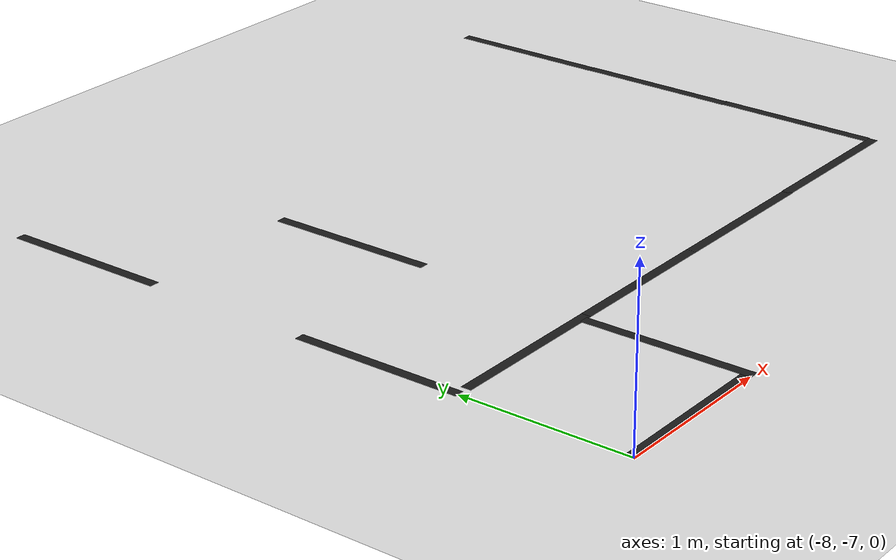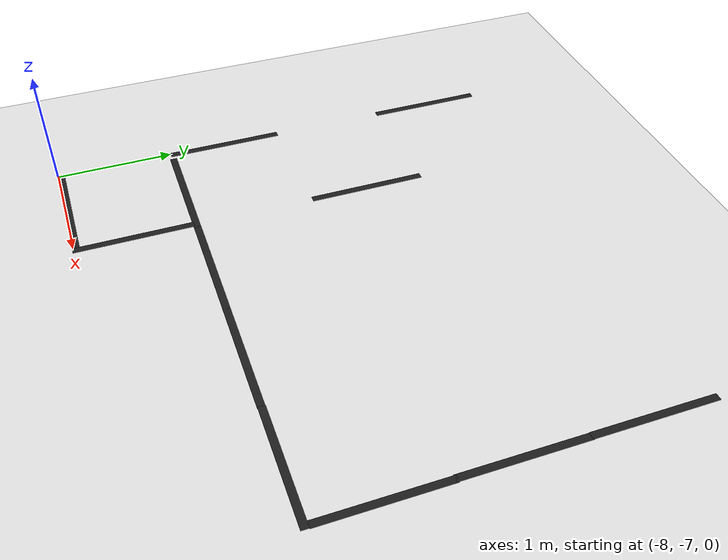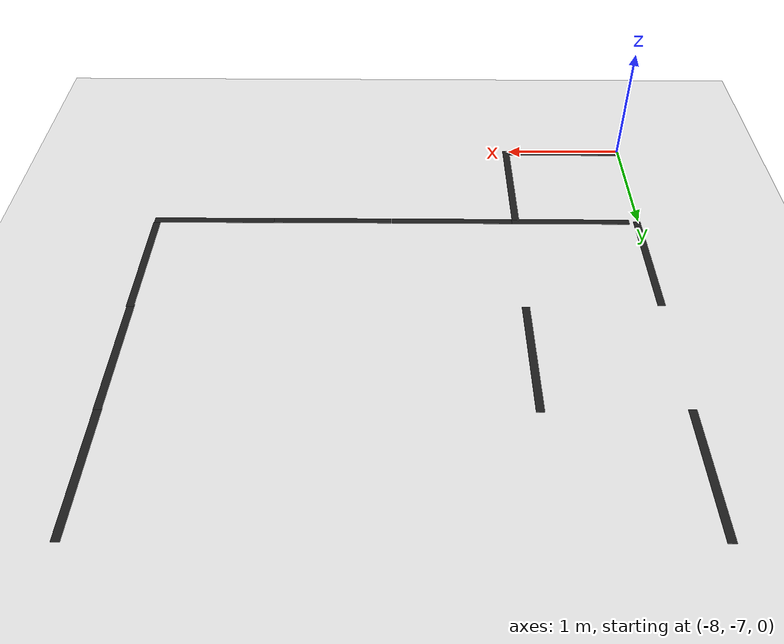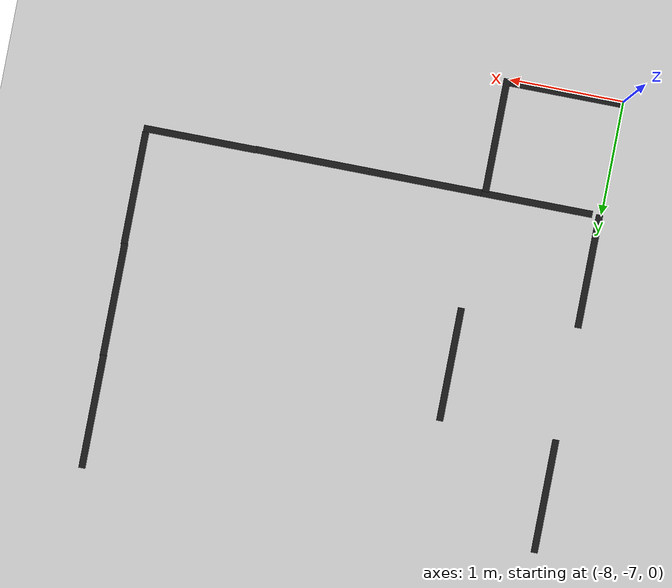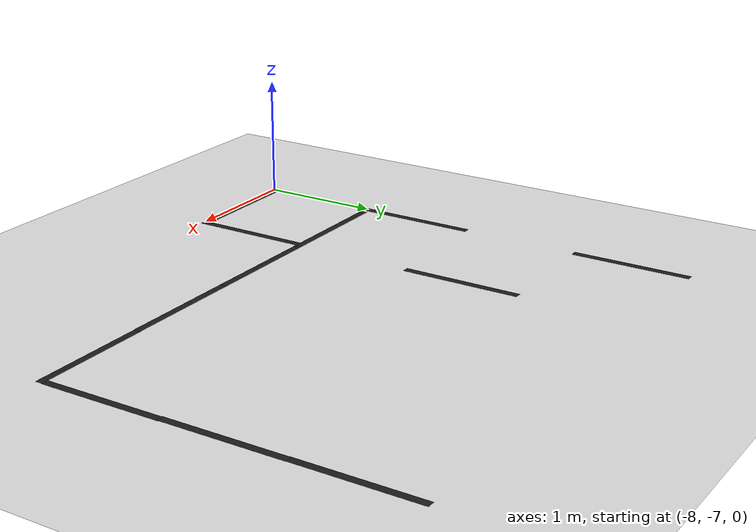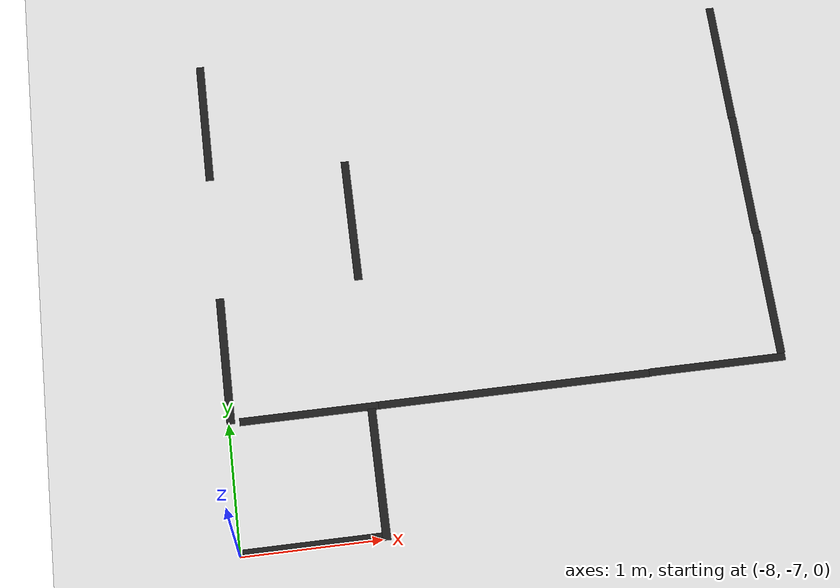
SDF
<sdf version="1.7">
 <world name="default">
  <model name="ground_plane">
   <static>1</static>
   <link name="link">
    <collision name="collision">
     <geometry><plane><normal>0 0 1</normal><size>100 100</size></plane></geometry>
     <surface>
      <contact><collide_bitmask>65535</collide_bitmask></contact>
      <friction><ode><mu>100</mu><mu2>50</mu2></ode></friction>
     </surface>
    </collision>
    <visual name="visual">
     <cast_shadows>0</cast_shadows>
     <geometry><plane><normal>0 0 1</normal><size>100 100</size></plane></geometry>
     <material>
      <script><uri>file://media/materials/scripts/gazebo.material</uri><name>Gazebo/White</name></script>
     </material>
    </visual>
   </link>
  </model>
  <model name="right_segment_5">
   <link name="right_link">
    <inertial>
     <mass>1</mass>
     <inertia>
      <ixx>0.166667</ixx>
      <ixy>0</ixy>
      <ixz>0</ixz>
      <iyy>0.166667</iyy>
      <iyz>0</iyz>
      <izz>0.166667</izz>
     </inertia>
    </inertial>
    <visual name="visual">
     <geometry><box><size>0.06 1 0.000937</size></box></geometry>
     <material>
      <script><name>Gazebo/Black</name><uri>file://media/materials/scripts/gazebo.material</uri></script>
      <shader type="pixel"><normal_map>__default__</normal_map></shader>
      <ambient>0 0 0 1</ambient>
      <diffuse>0 0 0 1</diffuse>
      <specular>0.1 0.1 0.1 1</specular>
      <emissive>0 0 0 1</emissive>
     </material>
    </visual>
    <collision name="collision">
     <geometry><box><size>0.06 1 0.000937</size></box></geometry>
     <surface>
      <friction>
       <ode><mu>1</mu><mu2>1</mu2><fdir1>0 0 0</fdir1><slip1>0</slip1><slip2>0</slip2></ode>
       <torsional>
        <coefficient>1</coefficient>
        <patch_radius>0</patch_radius>
        <surface_radius>0</surface_radius>
        <use_patch_radius>1</use_patch_radius>
        <ode><slip>0</slip></ode>
       </torsional>
      </friction>
      <bounce><restitution_coefficient>0</restitution_coefficient><threshold>1e+06</threshold></bounce>
      <contact>
       <collide_without_contact>0</collide_without_contact>
       <collide_without_contact_bitmask>1</collide_without_contact_bitmask>
       <collide_bitmask>1</collide_bitmask>
       <ode>
        <soft_cfm>0</soft_cfm>
        <soft_erp>0.2</soft_erp>
        <kp>1e+13</kp>
        <kd>1</kd>
        <max_vel>0.01</max_vel>
        <min_depth>0</min_depth>
       </ode>
       <bullet>
        <split_impulse>1</split_impulse>
        <split_impulse_penetration_threshold>-0.01</split_impulse_penetration_threshold>
        <soft_cfm>0</soft_cfm>
        <soft_erp>0.2</soft_erp>
        <kp>1e+13</kp>
        <kd>1</kd>
       </bullet>
      </contact>
     </surface>
    </collision>
   </link>
   <static>1</static>
   <pose>-6.96112 -4.47675 0.000468 0 -0 1.4e-05</pose>
  </model>
  <model name="right_segment_7">
   <link name="right_link">
    <inertial>
     <mass>1</mass>
     <inertia>
      <ixx>0.166667</ixx>
      <ixy>0</ixy>
      <ixz>0</ixz>
      <iyy>0.166667</iyy>
      <iyz>0</iyz>
      <izz>0.166667</izz>
     </inertia>
    </inertial>
    <visual name="visual">
     <geometry><box><size>0.06 1 0.000937</size></box></geometry>
     <material>
      <script><name>Gazebo/Black</name><uri>file://media/materials/scripts/gazebo.material</uri></script>
      <shader type="pixel"><normal_map>__default__</normal_map></shader>
      <ambient>0 0 0 1</ambient>
      <diffuse>0 0 0 1</diffuse>
      <specular>0.1 0.1 0.1 1</specular>
      <emissive>0 0 0 1</emissive>
     </material>
    </visual>
    <collision name="collision">
     <geometry><box><size>0.06 1 0.000937</size></box></geometry>
     <surface>
      <friction>
       <ode><mu>1</mu><mu2>1</mu2><fdir1>0 0 0</fdir1><slip1>0</slip1><slip2>0</slip2></ode>
       <torsional>
        <coefficient>1</coefficient>
        <patch_radius>0</patch_radius>
        <surface_radius>0</surface_radius>
        <use_patch_radius>1</use_patch_radius>
        <ode><slip>0</slip></ode>
       </torsional>
      </friction>
      <bounce><restitution_coefficient>0</restitution_coefficient><threshold>1e+06</threshold></bounce>
      <contact>
       <collide_without_contact>0</collide_without_contact>
       <collide_without_contact_bitmask>1</collide_without_contact_bitmask>
       <collide_bitmask>1</collide_bitmask>
       <ode>
        <soft_cfm>0</soft_cfm>
        <soft_erp>0.2</soft_erp>
        <kp>1e+13</kp>
        <kd>1</kd>
        <max_vel>0.01</max_vel>
        <min_depth>0</min_depth>
       </ode>
       <bullet>
        <split_impulse>1</split_impulse>
        <split_impulse_penetration_threshold>-0.01</split_impulse_penetration_threshold>
        <soft_cfm>0</soft_cfm>
        <soft_erp>0.2</soft_erp>
        <kp>1e+13</kp>
        <kd>1</kd>
       </bullet>
      </contact>
     </surface>
    </collision>
   </link>
   <static>1</static>
   <pose>-3.9883 -3.48553 0.000468 0 -0 1.4e-05</pose>
  </model>
  <model name="right_segment_8">
   <link name="right_link">
    <inertial>
     <mass>1</mass>
     <inertia>
      <ixx>0.166667</ixx>
      <ixy>0</ixy>
      <ixz>0</ixz>
      <iyy>0.166667</iyy>
      <iyz>0</iyz>
      <izz>0.166667</izz>
     </inertia>
    </inertial>
    <visual name="visual">
     <geometry><box><size>0.06 1 0.000937</size></box></geometry>
     <material>
      <script><name>Gazebo/Black</name><uri>file://media/materials/scripts/gazebo.material</uri></script>
      <shader type="pixel"><normal_map>__default__</normal_map></shader>
      <ambient>0 0 0 1</ambient>
      <diffuse>0 0 0 1</diffuse>
      <specular>0.1 0.1 0.1 1</specular>
      <emissive>0 0 0 1</emissive>
     </material>
    </visual>
    <collision name="collision">
     <geometry><box><size>0.06 1 0.000937</size></box></geometry>
     <surface>
      <friction>
       <ode><mu>1</mu><mu2>1</mu2><fdir1>0 0 0</fdir1><slip1>0</slip1><slip2>0</slip2></ode>
       <torsional>
        <coefficient>1</coefficient>
        <patch_radius>0</patch_radius>
        <surface_radius>0</surface_radius>
        <use_patch_radius>1</use_patch_radius>
        <ode><slip>0</slip></ode>
       </torsional>
      </friction>
      <bounce><restitution_coefficient>0</restitution_coefficient><threshold>1e+06</threshold></bounce>
      <contact>
       <collide_without_contact>0</collide_without_contact>
       <collide_without_contact_bitmask>1</collide_without_contact_bitmask>
       <collide_bitmask>1</collide_bitmask>
       <ode>
        <soft_cfm>0</soft_cfm>
        <soft_erp>0.2</soft_erp>
        <kp>1e+13</kp>
        <kd>1</kd>
        <max_vel>0.01</max_vel>
        <min_depth>0</min_depth>
       </ode>
       <bullet>
        <split_impulse>1</split_impulse>
        <split_impulse_penetration_threshold>-0.01</split_impulse_penetration_threshold>
        <soft_cfm>0</soft_cfm>
        <soft_erp>0.2</soft_erp>
        <kp>1e+13</kp>
        <kd>1</kd>
       </bullet>
      </contact>
     </surface>
    </collision>
   </link>
   <static>1</static>
   <pose>-3.9855 -4.47325 0.000468 0 -0 1.4e-05</pose>
  </model>
  <model name="right_segment_9">
   <link name="right_link">
    <inertial>
     <mass>1</mass>
     <inertia>
      <ixx>0.166667</ixx>
      <ixy>0</ixy>
      <ixz>0</ixz>
      <iyy>0.166667</iyy>
      <iyz>0</iyz>
      <izz>0.166667</izz>
     </inertia>
    </inertial>
    <visual name="visual">
     <geometry><box><size>0.06 1 0.000937</size></box></geometry>
     <material>
      <script><name>Gazebo/Black</name><uri>file://media/materials/scripts/gazebo.material</uri></script>
      <shader type="pixel"><normal_map>__default__</normal_map></shader>
      <ambient>0 0 0 1</ambient>
      <diffuse>0 0 0 1</diffuse>
      <specular>0.1 0.1 0.1 1</specular>
      <emissive>0 0 0 1</emissive>
     </material>
    </visual>
    <collision name="collision">
     <geometry><box><size>0.06 1 0.000937</size></box></geometry>
     <surface>
      <friction>
       <ode><mu>1</mu><mu2>1</mu2><fdir1>0 0 0</fdir1><slip1>0</slip1><slip2>0</slip2></ode>
       <torsional>
        <coefficient>1</coefficient>
        <patch_radius>0</patch_radius>
        <surface_radius>0</surface_radius>
        <use_patch_radius>1</use_patch_radius>
        <ode><slip>0</slip></ode>
       </torsional>
      </friction>
      <bounce><restitution_coefficient>0</restitution_coefficient><threshold>1e+06</threshold></bounce>
      <contact>
       <collide_without_contact>0</collide_without_contact>
       <collide_without_contact_bitmask>1</collide_without_contact_bitmask>
       <collide_bitmask>1</collide_bitmask>
       <ode>
        <soft_cfm>0</soft_cfm>
        <soft_erp>0.2</soft_erp>
        <kp>1e+13</kp>
        <kd>1</kd>
        <max_vel>0.01</max_vel>
        <min_depth>0</min_depth>
       </ode>
       <bullet>
        <split_impulse>1</split_impulse>
        <split_impulse_penetration_threshold>-0.01</split_impulse_penetration_threshold>
        <soft_cfm>0</soft_cfm>
        <soft_erp>0.2</soft_erp>
        <kp>1e+13</kp>
        <kd>1</kd>
       </bullet>
      </contact>
     </surface>
    </collision>
   </link>
   <static>1</static>
   <pose>-3.9806 -5.45645 0.000468 0 -0 1.4e-05</pose>
  </model>
  <model name="segment_6">
   <link name="straight_link">
    <inertial>
     <mass>1</mass>
     <inertia>
      <ixx>0.166667</ixx>
      <ixy>0</ixy>
      <ixz>0</ixz>
      <iyy>0.166667</iyy>
      <iyz>0</iyz>
      <izz>0.166667</izz>
     </inertia>
    </inertial>
    <visual name="visual">
     <geometry><box><size>1 0.06 0.000937</size></box></geometry>
     <material>
      <script><name>Gazebo/Black</name><uri>file://media/materials/scripts/gazebo.material</uri></script>
      <shader type="pixel"><normal_map>__default__</normal_map></shader>
      <ambient>0 0 0 1</ambient>
      <diffuse>0 0 0 1</diffuse>
      <specular>0.1 0.1 0.1 1</specular>
      <emissive>0 0 0 1</emissive>
     </material>
    </visual>
    <collision name="collision">
     <geometry><box><size>1 0.06 0.000937</size></box></geometry>
     <surface>
      <friction>
       <ode><mu>1</mu><mu2>1</mu2><fdir1>0 0 0</fdir1><slip1>0</slip1><slip2>0</slip2></ode>
       <torsional>
        <coefficient>1</coefficient>
        <patch_radius>0</patch_radius>
        <surface_radius>0</surface_radius>
        <use_patch_radius>1</use_patch_radius>
        <ode><slip>0</slip></ode>
       </torsional>
      </friction>
      <bounce><restitution_coefficient>0</restitution_coefficient><threshold>1e+06</threshold></bounce>
      <contact>
       <collide_without_contact>0</collide_without_contact>
       <collide_without_contact_bitmask>1</collide_without_contact_bitmask>
       <collide_bitmask>1</collide_bitmask>
       <ode>
        <soft_cfm>0</soft_cfm>
        <soft_erp>0.2</soft_erp>
        <kp>1e+13</kp>
        <kd>1</kd>
        <max_vel>0.01</max_vel>
        <min_depth>0</min_depth>
       </ode>
       <bullet>
        <split_impulse>1</split_impulse>
        <split_impulse_penetration_threshold>-0.01</split_impulse_penetration_threshold>
        <soft_cfm>0</soft_cfm>
        <soft_erp>0.2</soft_erp>
        <kp>1e+13</kp>
        <kd>1</kd>
       </bullet>
      </contact>
     </surface>
    </collision>
   </link>
   <static>1</static>
   <pose>-4.45601 -5.98574 0 0 -0 0</pose>
  </model>
  <model name="segment_7">
   <link name="straight_link">
    <inertial>
     <mass>1</mass>
     <inertia>
      <ixx>0.166667</ixx>
      <ixy>0</ixy>
      <ixz>0</ixz>
      <iyy>0.166667</iyy>
      <iyz>0</iyz>
      <izz>0.166667</izz>
     </inertia>
    </inertial>
    <visual name="visual">
     <geometry><box><size>1 0.06 0.000937</size></box></geometry>
     <material>
      <script><name>Gazebo/Black</name><uri>file://media/materials/scripts/gazebo.material</uri></script>
      <shader type="pixel"><normal_map>__default__</normal_map></shader>
      <ambient>0 0 0 1</ambient>
      <diffuse>0 0 0 1</diffuse>
      <specular>0.1 0.1 0.1 1</specular>
      <emissive>0 0 0 1</emissive>
     </material>
    </visual>
    <collision name="collision">
     <geometry><box><size>1 0.06 0.000937</size></box></geometry>
     <surface>
      <friction>
       <ode><mu>1</mu><mu2>1</mu2><fdir1>0 0 0</fdir1><slip1>0</slip1><slip2>0</slip2></ode>
       <torsional>
        <coefficient>1</coefficient>
        <patch_radius>0</patch_radius>
        <surface_radius>0</surface_radius>
        <use_patch_radius>1</use_patch_radius>
        <ode><slip>0</slip></ode>
       </torsional>
      </friction>
      <bounce><restitution_coefficient>0</restitution_coefficient><threshold>1e+06</threshold></bounce>
      <contact>
       <collide_without_contact>0</collide_without_contact>
       <collide_without_contact_bitmask>1</collide_without_contact_bitmask>
       <collide_bitmask>1</collide_bitmask>
       <ode>
        <soft_cfm>0</soft_cfm>
        <soft_erp>0.2</soft_erp>
        <kp>1e+13</kp>
        <kd>1</kd>
        <max_vel>0.01</max_vel>
        <min_depth>0</min_depth>
       </ode>
       <bullet>
        <split_impulse>1</split_impulse>
        <split_impulse_penetration_threshold>-0.01</split_impulse_penetration_threshold>
        <soft_cfm>0</soft_cfm>
        <soft_erp>0.2</soft_erp>
        <kp>1e+13</kp>
        <kd>1</kd>
       </bullet>
      </contact>
     </surface>
    </collision>
   </link>
   <static>1</static>
   <pose>-5.44042 -5.98863 0 0 -0 0</pose>
  </model>
  <model name="segment_8">
   <link name="straight_link">
    <inertial>
     <mass>1</mass>
     <inertia>
      <ixx>0.166667</ixx>
      <ixy>0</ixy>
      <ixz>0</ixz>
      <iyy>0.166667</iyy>
      <iyz>0</iyz>
      <izz>0.166667</izz>
     </inertia>
    </inertial>
    <visual name="visual">
     <geometry><box><size>1 0.06 0.000937</size></box></geometry>
     <material>
      <script><name>Gazebo/Black</name><uri>file://media/materials/scripts/gazebo.material</uri></script>
      <shader type="pixel"><normal_map>__default__</normal_map></shader>
      <ambient>0 0 0 1</ambient>
      <diffuse>0 0 0 1</diffuse>
      <specular>0.1 0.1 0.1 1</specular>
      <emissive>0 0 0 1</emissive>
     </material>
    </visual>
    <collision name="collision">
     <geometry><box><size>1 0.06 0.000937</size></box></geometry>
     <surface>
      <friction>
       <ode><mu>1</mu><mu2>1</mu2><fdir1>0 0 0</fdir1><slip1>0</slip1><slip2>0</slip2></ode>
       <torsional>
        <coefficient>1</coefficient>
        <patch_radius>0</patch_radius>
        <surface_radius>0</surface_radius>
        <use_patch_radius>1</use_patch_radius>
        <ode><slip>0</slip></ode>
       </torsional>
      </friction>
      <bounce><restitution_coefficient>0</restitution_coefficient><threshold>1e+06</threshold></bounce>
      <contact>
       <collide_without_contact>0</collide_without_contact>
       <collide_without_contact_bitmask>1</collide_without_contact_bitmask>
       <collide_bitmask>1</collide_bitmask>
       <ode>
        <soft_cfm>0</soft_cfm>
        <soft_erp>0.2</soft_erp>
        <kp>1e+13</kp>
        <kd>1</kd>
        <max_vel>0.01</max_vel>
        <min_depth>0</min_depth>
       </ode>
       <bullet>
        <split_impulse>1</split_impulse>
        <split_impulse_penetration_threshold>-0.01</split_impulse_penetration_threshold>
        <soft_cfm>0</soft_cfm>
        <soft_erp>0.2</soft_erp>
        <kp>1e+13</kp>
        <kd>1</kd>
       </bullet>
      </contact>
     </surface>
    </collision>
   </link>
   <static>1</static>
   <pose>-6.44185 -5.98837 0 0 -0 0</pose>
  </model>
  <model name="segment_9">
   <link name="straight_link">
    <inertial>
     <mass>1</mass>
     <inertia>
      <ixx>0.166667</ixx>
      <ixy>0</ixy>
      <ixz>0</ixz>
      <iyy>0.166667</iyy>
      <iyz>0</iyz>
      <izz>0.166667</izz>
     </inertia>
    </inertial>
    <visual name="visual">
     <geometry><box><size>1 0.06 0.000937</size></box></geometry>
     <material>
      <script><name>Gazebo/Black</name><uri>file://media/materials/scripts/gazebo.material</uri></script>
      <shader type="pixel"><normal_map>__default__</normal_map></shader>
      <ambient>0 0 0 1</ambient>
      <diffuse>0 0 0 1</diffuse>
      <specular>0.1 0.1 0.1 1</specular>
      <emissive>0 0 0 1</emissive>
     </material>
    </visual>
    <collision name="collision">
     <geometry><box><size>1 0.06 0.000937</size></box></geometry>
     <surface>
      <friction>
       <ode><mu>1</mu><mu2>1</mu2><fdir1>0 0 0</fdir1><slip1>0</slip1><slip2>0</slip2></ode>
       <torsional>
        <coefficient>1</coefficient>
        <patch_radius>0</patch_radius>
        <surface_radius>0</surface_radius>
        <use_patch_radius>1</use_patch_radius>
        <ode><slip>0</slip></ode>
       </torsional>
      </friction>
      <bounce><restitution_coefficient>0</restitution_coefficient><threshold>1e+06</threshold></bounce>
      <contact>
       <collide_without_contact>0</collide_without_contact>
       <collide_without_contact_bitmask>1</collide_without_contact_bitmask>
       <collide_bitmask>1</collide_bitmask>
       <ode>
        <soft_cfm>0</soft_cfm>
        <soft_erp>0.2</soft_erp>
        <kp>1e+13</kp>
        <kd>1</kd>
        <max_vel>0.01</max_vel>
        <min_depth>0</min_depth>
       </ode>
       <bullet>
        <split_impulse>1</split_impulse>
        <split_impulse_penetration_threshold>-0.01</split_impulse_penetration_threshold>
        <soft_cfm>0</soft_cfm>
        <soft_erp>0.2</soft_erp>
        <kp>1e+13</kp>
        <kd>1</kd>
       </bullet>
      </contact>
     </surface>
    </collision>
   </link>
   <static>1</static>
   <pose>-7.42385 -5.989 0 0 -0 0</pose>
  </model>
  <model name="right_segment_10">
   <link name="right_link">
    <inertial>
     <mass>1</mass>
     <inertia>
      <ixx>0.166667</ixx>
      <ixy>0</ixy>
      <ixz>0</ixz>
      <iyy>0.166667</iyy>
      <iyz>0</iyz>
      <izz>0.166667</izz>
     </inertia>
    </inertial>
    <visual name="visual">
     <geometry><box><size>0.06 1 0.000937</size></box></geometry>
     <material>
      <script><name>Gazebo/Black</name><uri>file://media/materials/scripts/gazebo.material</uri></script>
      <shader type="pixel"><normal_map>__default__</normal_map></shader>
      <ambient>0 0 0 1</ambient>
      <diffuse>0 0 0 1</diffuse>
      <specular>0.1 0.1 0.1 1</specular>
      <emissive>0 0 0 1</emissive>
     </material>
    </visual>
    <collision name="collision">
     <geometry><box><size>0.06 1 0.000937</size></box></geometry>
     <surface>
      <friction>
       <ode><mu>1</mu><mu2>1</mu2><fdir1>0 0 0</fdir1><slip1>0</slip1><slip2>0</slip2></ode>
       <torsional>
        <coefficient>1</coefficient>
        <patch_radius>0</patch_radius>
        <surface_radius>0</surface_radius>
        <use_patch_radius>1</use_patch_radius>
        <ode><slip>0</slip></ode>
       </torsional>
      </friction>
      <bounce><restitution_coefficient>0</restitution_coefficient><threshold>1e+06</threshold></bounce>
      <contact>
       <collide_without_contact>0</collide_without_contact>
       <collide_without_contact_bitmask>1</collide_without_contact_bitmask>
       <collide_bitmask>1</collide_bitmask>
       <ode>
        <soft_cfm>0</soft_cfm>
        <soft_erp>0.2</soft_erp>
        <kp>1e+13</kp>
        <kd>1</kd>
        <max_vel>0.01</max_vel>
        <min_depth>0</min_depth>
       </ode>
       <bullet>
        <split_impulse>1</split_impulse>
        <split_impulse_penetration_threshold>-0.01</split_impulse_penetration_threshold>
        <soft_cfm>0</soft_cfm>
        <soft_erp>0.2</soft_erp>
        <kp>1e+13</kp>
        <kd>1</kd>
       </bullet>
      </contact>
     </surface>
    </collision>
   </link>
   <static>1</static>
   <pose>-6.97562 -6.50648 0.000468 0 -0 1.4e-05</pose>
  </model>
  <model name="segment_11">
   <link name="straight_link">
    <inertial>
     <mass>1</mass>
     <inertia>
      <ixx>0.166667</ixx>
      <ixy>0</ixy>
      <ixz>0</ixz>
      <iyy>0.166667</iyy>
      <iyz>0</iyz>
      <izz>0.166667</izz>
     </inertia>
    </inertial>
    <visual name="visual">
     <geometry><box><size>1 0.06 0.000937</size></box></geometry>
     <material>
      <script><name>Gazebo/Black</name><uri>file://media/materials/scripts/gazebo.material</uri></script>
      <shader type="pixel"><normal_map>__default__</normal_map></shader>
      <ambient>0 0 0 1</ambient>
      <diffuse>0 0 0 1</diffuse>
      <specular>0.1 0.1 0.1 1</specular>
      <emissive>0 0 0 1</emissive>
     </material>
    </visual>
    <collision name="collision">
     <geometry><box><size>1 0.06 0.000937</size></box></geometry>
     <surface>
      <friction>
       <ode><mu>1</mu><mu2>1</mu2><fdir1>0 0 0</fdir1><slip1>0</slip1><slip2>0</slip2></ode>
       <torsional>
        <coefficient>1</coefficient>
        <patch_radius>0</patch_radius>
        <surface_radius>0</surface_radius>
        <use_patch_radius>1</use_patch_radius>
        <ode><slip>0</slip></ode>
       </torsional>
      </friction>
      <bounce><restitution_coefficient>0</restitution_coefficient><threshold>1e+06</threshold></bounce>
      <contact>
       <collide_without_contact>0</collide_without_contact>
       <collide_without_contact_bitmask>1</collide_without_contact_bitmask>
       <collide_bitmask>1</collide_bitmask>
       <ode>
        <soft_cfm>0</soft_cfm>
        <soft_erp>0.2</soft_erp>
        <kp>1e+13</kp>
        <kd>1</kd>
        <max_vel>0.01</max_vel>
        <min_depth>0</min_depth>
       </ode>
       <bullet>
        <split_impulse>1</split_impulse>
        <split_impulse_penetration_threshold>-0.01</split_impulse_penetration_threshold>
        <soft_cfm>0</soft_cfm>
        <soft_erp>0.2</soft_erp>
        <kp>1e+13</kp>
        <kd>1</kd>
       </bullet>
      </contact>
     </surface>
    </collision>
   </link>
   <static>1</static>
   <pose>-7.48367 -6.97588 0 0 -0 0</pose>
  </model>
  <model name="right_segment_14">
   <link name="right_link">
    <inertial>
     <mass>1</mass>
     <inertia>
      <ixx>0.166667</ixx>
      <ixy>0</ixy>
      <ixz>0</ixz>
      <iyy>0.166667</iyy>
      <iyz>0</iyz>
      <izz>0.166667</izz>
     </inertia>
    </inertial>
    <visual name="visual">
     <geometry><box><size>0.06 1 0.000937</size></box></geometry>
     <material>
      <script><name>Gazebo/Black</name><uri>file://media/materials/scripts/gazebo.material</uri></script>
      <shader type="pixel"><normal_map>__default__</normal_map></shader>
      <ambient>0 0 0 1</ambient>
      <diffuse>0 0 0 1</diffuse>
      <specular>0.1 0.1 0.1 1</specular>
      <emissive>0 0 0 1</emissive>
     </material>
    </visual>
    <collision name="collision">
     <geometry><box><size>0.06 1 0.000937</size></box></geometry>
     <surface>
      <friction>
       <ode><mu>1</mu><mu2>1</mu2><fdir1>0 0 0</fdir1><slip1>0</slip1><slip2>0</slip2></ode>
       <torsional>
        <coefficient>1</coefficient>
        <patch_radius>0</patch_radius>
        <surface_radius>0</surface_radius>
        <use_patch_radius>1</use_patch_radius>
        <ode><slip>0</slip></ode>
       </torsional>
      </friction>
      <bounce><restitution_coefficient>0</restitution_coefficient><threshold>1e+06</threshold></bounce>
      <contact>
       <collide_without_contact>0</collide_without_contact>
       <collide_without_contact_bitmask>1</collide_without_contact_bitmask>
       <collide_bitmask>1</collide_bitmask>
       <ode>
        <soft_cfm>0</soft_cfm>
        <soft_erp>0.2</soft_erp>
        <kp>1e+13</kp>
        <kd>1</kd>
        <max_vel>0.01</max_vel>
        <min_depth>0</min_depth>
       </ode>
       <bullet>
        <split_impulse>1</split_impulse>
        <split_impulse_penetration_threshold>-0.01</split_impulse_penetration_threshold>
        <soft_cfm>0</soft_cfm>
        <soft_erp>0.2</soft_erp>
        <kp>1e+13</kp>
        <kd>1</kd>
       </bullet>
      </contact>
     </surface>
    </collision>
   </link>
   <static>1</static>
   <pose>-7.98653 -5.49711 0.000468 0 -0 1.4e-05</pose>
  </model>
  <model name="right_segment_16">
   <link name="right_link">
    <inertial>
     <mass>1</mass>
     <inertia>
      <ixx>0.166667</ixx>
      <ixy>0</ixy>
      <ixz>0</ixz>
      <iyy>0.166667</iyy>
      <iyz>0</iyz>
      <izz>0.166667</izz>
     </inertia>
    </inertial>
    <visual name="visual">
     <geometry><box><size>0.06 1 0.000937</size></box></geometry>
     <material>
      <script><name>Gazebo/Black</name><uri>file://media/materials/scripts/gazebo.material</uri></script>
      <shader type="pixel"><normal_map>__default__</normal_map></shader>
      <ambient>0 0 0 1</ambient>
      <diffuse>0 0 0 1</diffuse>
      <specular>0.1 0.1 0.1 1</specular>
      <emissive>0 0 0 1</emissive>
     </material>
    </visual>
    <collision name="collision">
     <geometry><box><size>0.06 1 0.000937</size></box></geometry>
     <surface>
      <friction>
       <ode><mu>1</mu><mu2>1</mu2><fdir1>0 0 0</fdir1><slip1>0</slip1><slip2>0</slip2></ode>
       <torsional>
        <coefficient>1</coefficient>
        <patch_radius>0</patch_radius>
        <surface_radius>0</surface_radius>
        <use_patch_radius>1</use_patch_radius>
        <ode><slip>0</slip></ode>
       </torsional>
      </friction>
      <bounce><restitution_coefficient>0</restitution_coefficient><threshold>1e+06</threshold></bounce>
      <contact>
       <collide_without_contact>0</collide_without_contact>
       <collide_without_contact_bitmask>1</collide_without_contact_bitmask>
       <collide_bitmask>1</collide_bitmask>
       <ode>
        <soft_cfm>0</soft_cfm>
        <soft_erp>0.2</soft_erp>
        <kp>1e+13</kp>
        <kd>1</kd>
        <max_vel>0.01</max_vel>
        <min_depth>0</min_depth>
       </ode>
       <bullet>
        <split_impulse>1</split_impulse>
        <split_impulse_penetration_threshold>-0.01</split_impulse_penetration_threshold>
        <soft_cfm>0</soft_cfm>
        <soft_erp>0.2</soft_erp>
        <kp>1e+13</kp>
        <kd>1</kd>
       </bullet>
      </contact>
     </surface>
    </collision>
   </link>
   <static>1</static>
   <pose>-7.98411 -3.5083 0.000468 0 -0 1.4e-05</pose>
  </model>
 </world>
</sdf>
